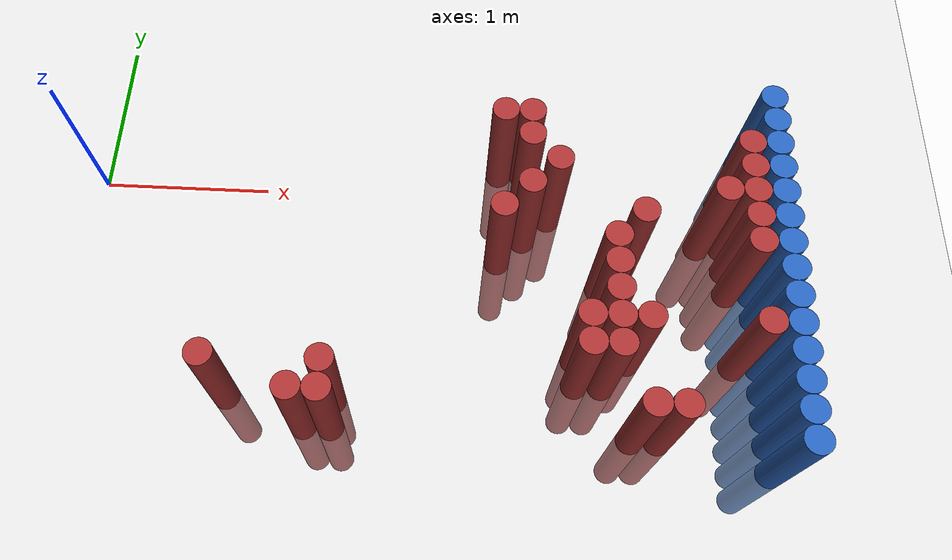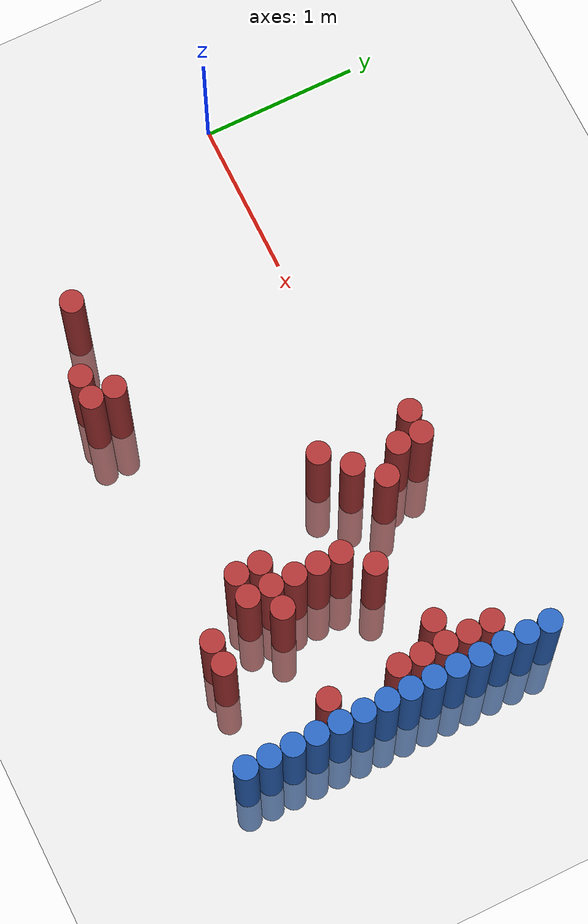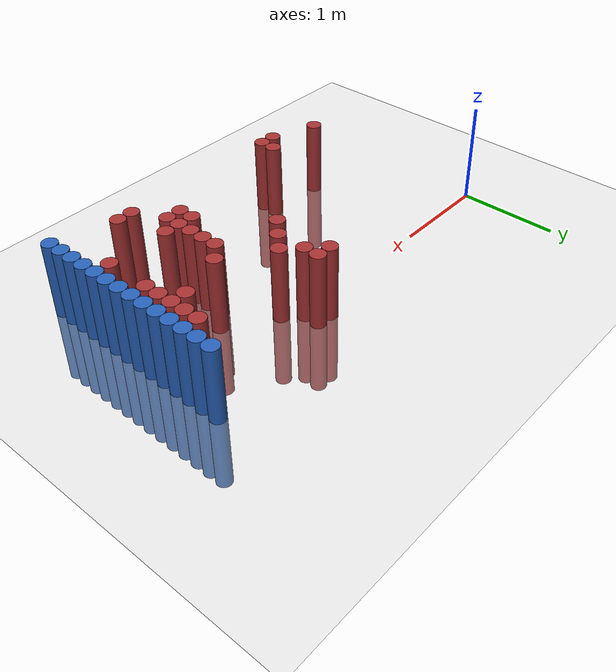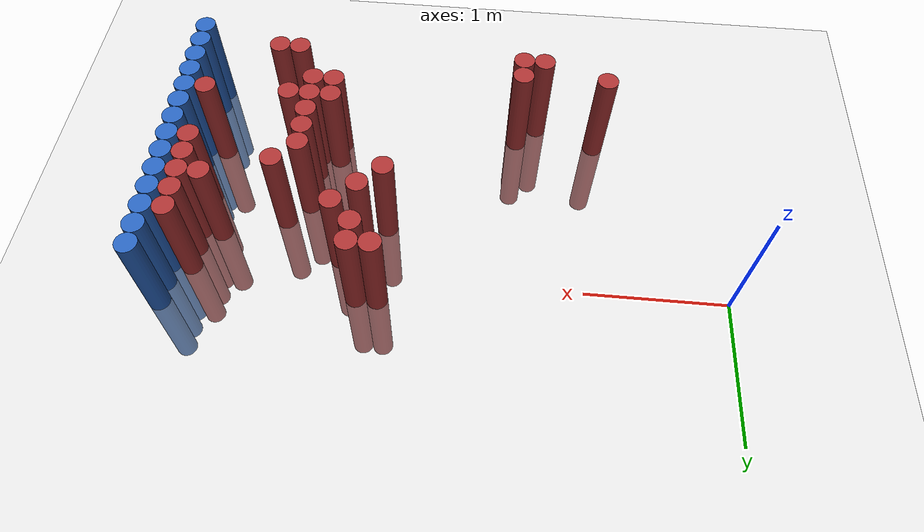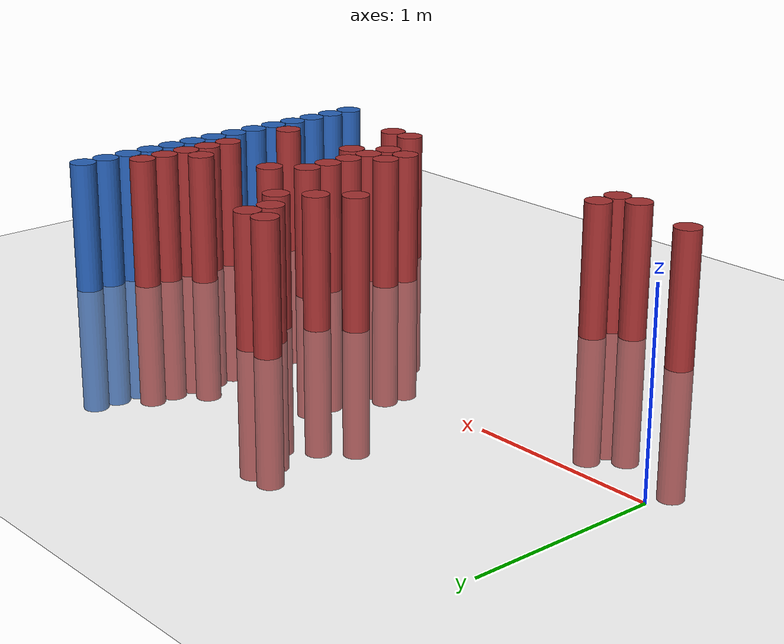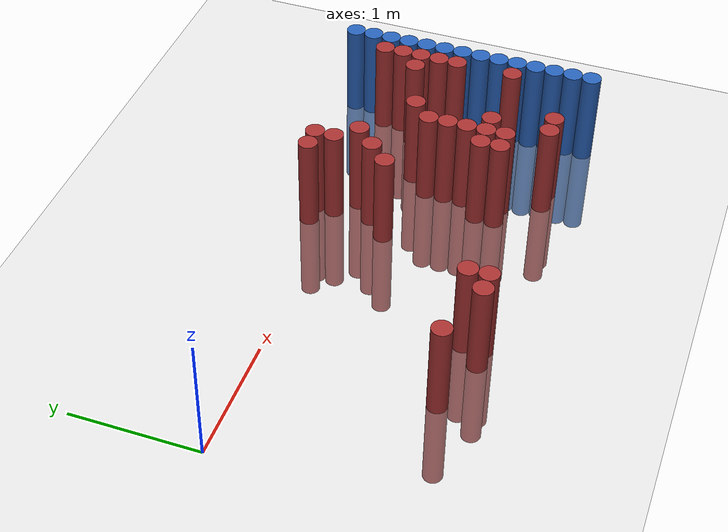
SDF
<sdf version="1.6">
 <world name="default">
  <model name="ground_plane">
   <static>1</static>
   <link name="link">
    <collision name="collision">
     <geometry><plane><normal>0 0 1</normal><size>100 100</size></plane></geometry>
     <surface><friction><ode><mu>100</mu><mu2>50</mu2></ode></friction></surface>
    </collision>
    <visual name="visual">
     <cast_shadows>0</cast_shadows>
     <geometry><plane><normal>0 0 1</normal><size>100 100</size></plane></geometry>
     <material>
      <script><uri>file://media/materials/scripts/gazebo.material</uri><name>Gazebo/Grey</name></script>
     </material>
    </visual>
   </link>
  </model>
  <model name="unit_cylinder_94">
   <static>1</static>
   <pose>3.925000 -1.475000 0.000000 0.000000 0.000000 0.000000</pose>
   <link name="link">
    <inertial>
     <mass>1</mass>
     <inertia><ixx>0.145833</ixx><ixy>0</ixy><ixz>0</ixz><iyy>0.145833</iyy><iyz>0</iyz><izz>0.125</izz></inertia>
    </inertial>
    <collision name="collision">
     <geometry><cylinder><radius>0.075000</radius><length>1.5</length></cylinder></geometry>
    </collision>
    <visual name="visual">
     <geometry><cylinder><radius>0.075000</radius><length>1.5</length></cylinder></geometry>
     <material>
      <ambient>0.152000 0.379000 0.720000 1</ambient>
      <diffuse>0.152000 0.379000 0.720000 1</diffuse>
     </material>
     <material>
      <script><name>Gazebo/Grey</name><uri>file://media/materials/scripts/gazebo.material</uri></script>
     </material>
    </visual>
   </link>
  </model>
  <model name="unit_cylinder_96">
   <static>1</static>
   <pose>3.925000 -1.325000 0.000000 0.000000 0.000000 0.000000</pose>
   <link name="link">
    <inertial>
     <mass>1</mass>
     <inertia><ixx>0.145833</ixx><ixy>0</ixy><ixz>0</ixz><iyy>0.145833</iyy><iyz>0</iyz><izz>0.125</izz></inertia>
    </inertial>
    <collision name="collision">
     <geometry><cylinder><radius>0.075000</radius><length>1.5</length></cylinder></geometry>
    </collision>
    <visual name="visual">
     <geometry><cylinder><radius>0.075000</radius><length>1.5</length></cylinder></geometry>
     <material>
      <ambient>0.152000 0.379000 0.720000 1</ambient>
      <diffuse>0.152000 0.379000 0.720000 1</diffuse>
     </material>
     <material>
      <script><name>Gazebo/Grey</name><uri>file://media/materials/scripts/gazebo.material</uri></script>
     </material>
    </visual>
   </link>
  </model>
  <model name="unit_cylinder_98">
   <static>1</static>
   <pose>3.925000 -1.175000 0.000000 0.000000 0.000000 0.000000</pose>
   <link name="link">
    <inertial>
     <mass>1</mass>
     <inertia><ixx>0.145833</ixx><ixy>0</ixy><ixz>0</ixz><iyy>0.145833</iyy><iyz>0</iyz><izz>0.125</izz></inertia>
    </inertial>
    <collision name="collision">
     <geometry><cylinder><radius>0.075000</radius><length>1.5</length></cylinder></geometry>
    </collision>
    <visual name="visual">
     <geometry><cylinder><radius>0.075000</radius><length>1.5</length></cylinder></geometry>
     <material>
      <ambient>0.152000 0.379000 0.720000 1</ambient>
      <diffuse>0.152000 0.379000 0.720000 1</diffuse>
     </material>
     <material>
      <script><name>Gazebo/Grey</name><uri>file://media/materials/scripts/gazebo.material</uri></script>
     </material>
    </visual>
   </link>
  </model>
  <model name="unit_cylinder_100">
   <static>1</static>
   <pose>3.925000 -1.025000 0.000000 0.000000 0.000000 0.000000</pose>
   <link name="link">
    <inertial>
     <mass>1</mass>
     <inertia><ixx>0.145833</ixx><ixy>0</ixy><ixz>0</ixz><iyy>0.145833</iyy><iyz>0</iyz><izz>0.125</izz></inertia>
    </inertial>
    <collision name="collision">
     <geometry><cylinder><radius>0.075000</radius><length>1.5</length></cylinder></geometry>
    </collision>
    <visual name="visual">
     <geometry><cylinder><radius>0.075000</radius><length>1.5</length></cylinder></geometry>
     <material>
      <ambient>0.152000 0.379000 0.720000 1</ambient>
      <diffuse>0.152000 0.379000 0.720000 1</diffuse>
     </material>
     <material>
      <script><name>Gazebo/Grey</name><uri>file://media/materials/scripts/gazebo.material</uri></script>
     </material>
    </visual>
   </link>
  </model>
  <model name="unit_cylinder_102">
   <static>1</static>
   <pose>3.925000 -0.875000 0.000000 0.000000 0.000000 0.000000</pose>
   <link name="link">
    <inertial>
     <mass>1</mass>
     <inertia><ixx>0.145833</ixx><ixy>0</ixy><ixz>0</ixz><iyy>0.145833</iyy><iyz>0</iyz><izz>0.125</izz></inertia>
    </inertial>
    <collision name="collision">
     <geometry><cylinder><radius>0.075000</radius><length>1.5</length></cylinder></geometry>
    </collision>
    <visual name="visual">
     <geometry><cylinder><radius>0.075000</radius><length>1.5</length></cylinder></geometry>
     <material>
      <ambient>0.152000 0.379000 0.720000 1</ambient>
      <diffuse>0.152000 0.379000 0.720000 1</diffuse>
     </material>
     <material>
      <script><name>Gazebo/Grey</name><uri>file://media/materials/scripts/gazebo.material</uri></script>
     </material>
    </visual>
   </link>
  </model>
  <model name="unit_cylinder_104">
   <static>1</static>
   <pose>3.925000 -0.725000 0.000000 0.000000 0.000000 0.000000</pose>
   <link name="link">
    <inertial>
     <mass>1</mass>
     <inertia><ixx>0.145833</ixx><ixy>0</ixy><ixz>0</ixz><iyy>0.145833</iyy><iyz>0</iyz><izz>0.125</izz></inertia>
    </inertial>
    <collision name="collision">
     <geometry><cylinder><radius>0.075000</radius><length>1.5</length></cylinder></geometry>
    </collision>
    <visual name="visual">
     <geometry><cylinder><radius>0.075000</radius><length>1.5</length></cylinder></geometry>
     <material>
      <ambient>0.152000 0.379000 0.720000 1</ambient>
      <diffuse>0.152000 0.379000 0.720000 1</diffuse>
     </material>
     <material>
      <script><name>Gazebo/Grey</name><uri>file://media/materials/scripts/gazebo.material</uri></script>
     </material>
    </visual>
   </link>
  </model>
  <model name="unit_cylinder_106">
   <static>1</static>
   <pose>3.925000 -0.575000 0.000000 0.000000 0.000000 0.000000</pose>
   <link name="link">
    <inertial>
     <mass>1</mass>
     <inertia><ixx>0.145833</ixx><ixy>0</ixy><ixz>0</ixz><iyy>0.145833</iyy><iyz>0</iyz><izz>0.125</izz></inertia>
    </inertial>
    <collision name="collision">
     <geometry><cylinder><radius>0.075000</radius><length>1.5</length></cylinder></geometry>
    </collision>
    <visual name="visual">
     <geometry><cylinder><radius>0.075000</radius><length>1.5</length></cylinder></geometry>
     <material>
      <ambient>0.152000 0.379000 0.720000 1</ambient>
      <diffuse>0.152000 0.379000 0.720000 1</diffuse>
     </material>
     <material>
      <script><name>Gazebo/Grey</name><uri>file://media/materials/scripts/gazebo.material</uri></script>
     </material>
    </visual>
   </link>
  </model>
  <model name="unit_cylinder_108">
   <static>1</static>
   <pose>3.925000 -0.425000 0.000000 0.000000 0.000000 0.000000</pose>
   <link name="link">
    <inertial>
     <mass>1</mass>
     <inertia><ixx>0.145833</ixx><ixy>0</ixy><ixz>0</ixz><iyy>0.145833</iyy><iyz>0</iyz><izz>0.125</izz></inertia>
    </inertial>
    <collision name="collision">
     <geometry><cylinder><radius>0.075000</radius><length>1.5</length></cylinder></geometry>
    </collision>
    <visual name="visual">
     <geometry><cylinder><radius>0.075000</radius><length>1.5</length></cylinder></geometry>
     <material>
      <ambient>0.152000 0.379000 0.720000 1</ambient>
      <diffuse>0.152000 0.379000 0.720000 1</diffuse>
     </material>
     <material>
      <script><name>Gazebo/Grey</name><uri>file://media/materials/scripts/gazebo.material</uri></script>
     </material>
    </visual>
   </link>
  </model>
  <model name="unit_cylinder_110">
   <static>1</static>
   <pose>3.925000 -0.275000 0.000000 0.000000 0.000000 0.000000</pose>
   <link name="link">
    <inertial>
     <mass>1</mass>
     <inertia><ixx>0.145833</ixx><ixy>0</ixy><ixz>0</ixz><iyy>0.145833</iyy><iyz>0</iyz><izz>0.125</izz></inertia>
    </inertial>
    <collision name="collision">
     <geometry><cylinder><radius>0.075000</radius><length>1.5</length></cylinder></geometry>
    </collision>
    <visual name="visual">
     <geometry><cylinder><radius>0.075000</radius><length>1.5</length></cylinder></geometry>
     <material>
      <ambient>0.152000 0.379000 0.720000 1</ambient>
      <diffuse>0.152000 0.379000 0.720000 1</diffuse>
     </material>
     <material>
      <script><name>Gazebo/Grey</name><uri>file://media/materials/scripts/gazebo.material</uri></script>
     </material>
    </visual>
   </link>
  </model>
  <model name="unit_cylinder_112">
   <static>1</static>
   <pose>3.925000 -0.125000 0.000000 0.000000 0.000000 0.000000</pose>
   <link name="link">
    <inertial>
     <mass>1</mass>
     <inertia><ixx>0.145833</ixx><ixy>0</ixy><ixz>0</ixz><iyy>0.145833</iyy><iyz>0</iyz><izz>0.125</izz></inertia>
    </inertial>
    <collision name="collision">
     <geometry><cylinder><radius>0.075000</radius><length>1.5</length></cylinder></geometry>
    </collision>
    <visual name="visual">
     <geometry><cylinder><radius>0.075000</radius><length>1.5</length></cylinder></geometry>
     <material>
      <ambient>0.152000 0.379000 0.720000 1</ambient>
      <diffuse>0.152000 0.379000 0.720000 1</diffuse>
     </material>
     <material>
      <script><name>Gazebo/Grey</name><uri>file://media/materials/scripts/gazebo.material</uri></script>
     </material>
    </visual>
   </link>
  </model>
  <model name="unit_cylinder_114">
   <static>1</static>
   <pose>3.925000 0.025000 0.000000 0.000000 0.000000 0.000000</pose>
   <link name="link">
    <inertial>
     <mass>1</mass>
     <inertia><ixx>0.145833</ixx><ixy>0</ixy><ixz>0</ixz><iyy>0.145833</iyy><iyz>0</iyz><izz>0.125</izz></inertia>
    </inertial>
    <collision name="collision">
     <geometry><cylinder><radius>0.075000</radius><length>1.5</length></cylinder></geometry>
    </collision>
    <visual name="visual">
     <geometry><cylinder><radius>0.075000</radius><length>1.5</length></cylinder></geometry>
     <material>
      <ambient>0.152000 0.379000 0.720000 1</ambient>
      <diffuse>0.152000 0.379000 0.720000 1</diffuse>
     </material>
     <material>
      <script><name>Gazebo/Grey</name><uri>file://media/materials/scripts/gazebo.material</uri></script>
     </material>
    </visual>
   </link>
  </model>
  <model name="unit_cylinder_116">
   <static>1</static>
   <pose>3.925000 0.175000 0.000000 0.000000 0.000000 0.000000</pose>
   <link name="link">
    <inertial>
     <mass>1</mass>
     <inertia><ixx>0.145833</ixx><ixy>0</ixy><ixz>0</ixz><iyy>0.145833</iyy><iyz>0</iyz><izz>0.125</izz></inertia>
    </inertial>
    <collision name="collision">
     <geometry><cylinder><radius>0.075000</radius><length>1.5</length></cylinder></geometry>
    </collision>
    <visual name="visual">
     <geometry><cylinder><radius>0.075000</radius><length>1.5</length></cylinder></geometry>
     <material>
      <ambient>0.152000 0.379000 0.720000 1</ambient>
      <diffuse>0.152000 0.379000 0.720000 1</diffuse>
     </material>
     <material>
      <script><name>Gazebo/Grey</name><uri>file://media/materials/scripts/gazebo.material</uri></script>
     </material>
    </visual>
   </link>
  </model>
  <model name="unit_cylinder_118">
   <static>1</static>
   <pose>3.925000 0.325000 0.000000 0.000000 0.000000 0.000000</pose>
   <link name="link">
    <inertial>
     <mass>1</mass>
     <inertia><ixx>0.145833</ixx><ixy>0</ixy><ixz>0</ixz><iyy>0.145833</iyy><iyz>0</iyz><izz>0.125</izz></inertia>
    </inertial>
    <collision name="collision">
     <geometry><cylinder><radius>0.075000</radius><length>1.5</length></cylinder></geometry>
    </collision>
    <visual name="visual">
     <geometry><cylinder><radius>0.075000</radius><length>1.5</length></cylinder></geometry>
     <material>
      <ambient>0.152000 0.379000 0.720000 1</ambient>
      <diffuse>0.152000 0.379000 0.720000 1</diffuse>
     </material>
     <material>
      <script><name>Gazebo/Grey</name><uri>file://media/materials/scripts/gazebo.material</uri></script>
     </material>
    </visual>
   </link>
  </model>
  <model name="unit_cylinder_336">
   <static>1</static>
   <pose>0.925000 -1.325000 0.000000 0.000000 0.000000 0.000000</pose>
   <link name="link">
    <inertial>
     <mass>1</mass>
     <inertia><ixx>0.145833</ixx><ixy>0</ixy><ixz>0</ixz><iyy>0.145833</iyy><iyz>0</iyz><izz>0.125</izz></inertia>
    </inertial>
    <collision name="collision">
     <geometry><cylinder><radius>0.075000</radius><length>1.5</length></cylinder></geometry>
    </collision>
    <visual name="visual">
     <geometry><cylinder><radius>0.075000</radius><length>1.5</length></cylinder></geometry>
     <material>
      <ambient>0.648000 0.192000 0.192000 1</ambient>
      <diffuse>0.648000 0.192000 0.192000 1</diffuse>
     </material>
     <material>
      <script><name>Gazebo/Grey</name><uri>file://media/materials/scripts/gazebo.material</uri></script>
     </material>
    </visual>
   </link>
  </model>
  <model name="unit_cylinder_350">
   <static>1</static>
   <pose>1.375000 -1.475000 0.000000 0.000000 0.000000 0.000000</pose>
   <link name="link">
    <inertial>
     <mass>1</mass>
     <inertia><ixx>0.145833</ixx><ixy>0</ixy><ixz>0</ixz><iyy>0.145833</iyy><iyz>0</iyz><izz>0.125</izz></inertia>
    </inertial>
    <collision name="collision">
     <geometry><cylinder><radius>0.075000</radius><length>1.5</length></cylinder></geometry>
    </collision>
    <visual name="visual">
     <geometry><cylinder><radius>0.075000</radius><length>1.5</length></cylinder></geometry>
     <material>
      <ambient>0.648000 0.192000 0.192000 1</ambient>
      <diffuse>0.648000 0.192000 0.192000 1</diffuse>
     </material>
     <material>
      <script><name>Gazebo/Grey</name><uri>file://media/materials/scripts/gazebo.material</uri></script>
     </material>
    </visual>
   </link>
  </model>
  <model name="unit_cylinder_355">
   <static>1</static>
   <pose>1.525000 -1.475000 0.000000 0.000000 0.000000 0.000000</pose>
   <link name="link">
    <inertial>
     <mass>1</mass>
     <inertia><ixx>0.145833</ixx><ixy>0</ixy><ixz>0</ixz><iyy>0.145833</iyy><iyz>0</iyz><izz>0.125</izz></inertia>
    </inertial>
    <collision name="collision">
     <geometry><cylinder><radius>0.075000</radius><length>1.5</length></cylinder></geometry>
    </collision>
    <visual name="visual">
     <geometry><cylinder><radius>0.075000</radius><length>1.5</length></cylinder></geometry>
     <material>
      <ambient>0.648000 0.192000 0.192000 1</ambient>
      <diffuse>0.648000 0.192000 0.192000 1</diffuse>
     </material>
     <material>
      <script><name>Gazebo/Grey</name><uri>file://media/materials/scripts/gazebo.material</uri></script>
     </material>
    </visual>
   </link>
  </model>
  <model name="unit_cylinder_356">
   <static>1</static>
   <pose>1.525000 -1.325000 0.000000 0.000000 0.000000 0.000000</pose>
   <link name="link">
    <inertial>
     <mass>1</mass>
     <inertia><ixx>0.145833</ixx><ixy>0</ixy><ixz>0</ixz><iyy>0.145833</iyy><iyz>0</iyz><izz>0.125</izz></inertia>
    </inertial>
    <collision name="collision">
     <geometry><cylinder><radius>0.075000</radius><length>1.5</length></cylinder></geometry>
    </collision>
    <visual name="visual">
     <geometry><cylinder><radius>0.075000</radius><length>1.5</length></cylinder></geometry>
     <material>
      <ambient>0.648000 0.192000 0.192000 1</ambient>
      <diffuse>0.648000 0.192000 0.192000 1</diffuse>
     </material>
     <material>
      <script><name>Gazebo/Grey</name><uri>file://media/materials/scripts/gazebo.material</uri></script>
     </material>
    </visual>
   </link>
  </model>
  <model name="unit_cylinder_377">
   <static>1</static>
   <pose>2.425000 -0.425000 0.000000 0.000000 0.000000 0.000000</pose>
   <link name="link">
    <inertial>
     <mass>1</mass>
     <inertia><ixx>0.145833</ixx><ixy>0</ixy><ixz>0</ixz><iyy>0.145833</iyy><iyz>0</iyz><izz>0.125</izz></inertia>
    </inertial>
    <collision name="collision">
     <geometry><cylinder><radius>0.075000</radius><length>1.5</length></cylinder></geometry>
    </collision>
    <visual name="visual">
     <geometry><cylinder><radius>0.075000</radius><length>1.5</length></cylinder></geometry>
     <material>
      <ambient>0.648000 0.192000 0.192000 1</ambient>
      <diffuse>0.648000 0.192000 0.192000 1</diffuse>
     </material>
     <material>
      <script><name>Gazebo/Grey</name><uri>file://media/materials/scripts/gazebo.material</uri></script>
     </material>
    </visual>
   </link>
  </model>
  <model name="unit_cylinder_378">
   <static>1</static>
   <pose>2.425000 0.175000 0.000000 0.000000 0.000000 0.000000</pose>
   <link name="link">
    <inertial>
     <mass>1</mass>
     <inertia><ixx>0.145833</ixx><ixy>0</ixy><ixz>0</ixz><iyy>0.145833</iyy><iyz>0</iyz><izz>0.125</izz></inertia>
    </inertial>
    <collision name="collision">
     <geometry><cylinder><radius>0.075000</radius><length>1.5</length></cylinder></geometry>
    </collision>
    <visual name="visual">
     <geometry><cylinder><radius>0.075000</radius><length>1.5</length></cylinder></geometry>
     <material>
      <ambient>0.648000 0.192000 0.192000 1</ambient>
      <diffuse>0.648000 0.192000 0.192000 1</diffuse>
     </material>
     <material>
      <script><name>Gazebo/Grey</name><uri>file://media/materials/scripts/gazebo.material</uri></script>
     </material>
    </visual>
   </link>
  </model>
  <model name="unit_cylinder_379">
   <static>1</static>
   <pose>2.575000 -0.275000 0.000000 0.000000 0.000000 0.000000</pose>
   <link name="link">
    <inertial>
     <mass>1</mass>
     <inertia><ixx>0.145833</ixx><ixy>0</ixy><ixz>0</ixz><iyy>0.145833</iyy><iyz>0</iyz><izz>0.125</izz></inertia>
    </inertial>
    <collision name="collision">
     <geometry><cylinder><radius>0.075000</radius><length>1.5</length></cylinder></geometry>
    </collision>
    <visual name="visual">
     <geometry><cylinder><radius>0.075000</radius><length>1.5</length></cylinder></geometry>
     <material>
      <ambient>0.648000 0.192000 0.192000 1</ambient>
      <diffuse>0.648000 0.192000 0.192000 1</diffuse>
     </material>
     <material>
      <script><name>Gazebo/Grey</name><uri>file://media/materials/scripts/gazebo.material</uri></script>
     </material>
    </visual>
   </link>
  </model>
  <model name="unit_cylinder_380">
   <static>1</static>
   <pose>2.575000 0.025000 0.000000 0.000000 0.000000 0.000000</pose>
   <link name="link">
    <inertial>
     <mass>1</mass>
     <inertia><ixx>0.145833</ixx><ixy>0</ixy><ixz>0</ixz><iyy>0.145833</iyy><iyz>0</iyz><izz>0.125</izz></inertia>
    </inertial>
    <collision name="collision">
     <geometry><cylinder><radius>0.075000</radius><length>1.5</length></cylinder></geometry>
    </collision>
    <visual name="visual">
     <geometry><cylinder><radius>0.075000</radius><length>1.5</length></cylinder></geometry>
     <material>
      <ambient>0.648000 0.192000 0.192000 1</ambient>
      <diffuse>0.648000 0.192000 0.192000 1</diffuse>
     </material>
     <material>
      <script><name>Gazebo/Grey</name><uri>file://media/materials/scripts/gazebo.material</uri></script>
     </material>
    </visual>
   </link>
  </model>
  <model name="unit_cylinder_381">
   <static>1</static>
   <pose>2.575000 0.175000 0.000000 0.000000 0.000000 0.000000</pose>
   <link name="link">
    <inertial>
     <mass>1</mass>
     <inertia><ixx>0.145833</ixx><ixy>0</ixy><ixz>0</ixz><iyy>0.145833</iyy><iyz>0</iyz><izz>0.125</izz></inertia>
    </inertial>
    <collision name="collision">
     <geometry><cylinder><radius>0.075000</radius><length>1.5</length></cylinder></geometry>
    </collision>
    <visual name="visual">
     <geometry><cylinder><radius>0.075000</radius><length>1.5</length></cylinder></geometry>
     <material>
      <ambient>0.648000 0.192000 0.192000 1</ambient>
      <diffuse>0.648000 0.192000 0.192000 1</diffuse>
     </material>
     <material>
      <script><name>Gazebo/Grey</name><uri>file://media/materials/scripts/gazebo.material</uri></script>
     </material>
    </visual>
   </link>
  </model>
  <model name="unit_cylinder_383">
   <static>1</static>
   <pose>2.725000 -0.125000 0.000000 0.000000 0.000000 0.000000</pose>
   <link name="link">
    <inertial>
     <mass>1</mass>
     <inertia><ixx>0.145833</ixx><ixy>0</ixy><ixz>0</ixz><iyy>0.145833</iyy><iyz>0</iyz><izz>0.125</izz></inertia>
    </inertial>
    <collision name="collision">
     <geometry><cylinder><radius>0.075000</radius><length>1.5</length></cylinder></geometry>
    </collision>
    <visual name="visual">
     <geometry><cylinder><radius>0.075000</radius><length>1.5</length></cylinder></geometry>
     <material>
      <ambient>0.648000 0.192000 0.192000 1</ambient>
      <diffuse>0.648000 0.192000 0.192000 1</diffuse>
     </material>
     <material>
      <script><name>Gazebo/Grey</name><uri>file://media/materials/scripts/gazebo.material</uri></script>
     </material>
    </visual>
   </link>
  </model>
  <model name="unit_cylinder_386">
   <static>1</static>
   <pose>2.875000 -1.175000 0.000000 0.000000 0.000000 0.000000</pose>
   <link name="link">
    <inertial>
     <mass>1</mass>
     <inertia><ixx>0.145833</ixx><ixy>0</ixy><ixz>0</ixz><iyy>0.145833</iyy><iyz>0</iyz><izz>0.125</izz></inertia>
    </inertial>
    <collision name="collision">
     <geometry><cylinder><radius>0.075000</radius><length>1.5</length></cylinder></geometry>
    </collision>
    <visual name="visual">
     <geometry><cylinder><radius>0.075000</radius><length>1.5</length></cylinder></geometry>
     <material>
      <ambient>0.648000 0.192000 0.192000 1</ambient>
      <diffuse>0.648000 0.192000 0.192000 1</diffuse>
     </material>
     <material>
      <script><name>Gazebo/Grey</name><uri>file://media/materials/scripts/gazebo.material</uri></script>
     </material>
    </visual>
   </link>
  </model>
  <model name="unit_cylinder_387">
   <static>1</static>
   <pose>2.875000 -1.025000 0.000000 0.000000 0.000000 0.000000</pose>
   <link name="link">
    <inertial>
     <mass>1</mass>
     <inertia><ixx>0.145833</ixx><ixy>0</ixy><ixz>0</ixz><iyy>0.145833</iyy><iyz>0</iyz><izz>0.125</izz></inertia>
    </inertial>
    <collision name="collision">
     <geometry><cylinder><radius>0.075000</radius><length>1.5</length></cylinder></geometry>
    </collision>
    <visual name="visual">
     <geometry><cylinder><radius>0.075000</radius><length>1.5</length></cylinder></geometry>
     <material>
      <ambient>0.648000 0.192000 0.192000 1</ambient>
      <diffuse>0.648000 0.192000 0.192000 1</diffuse>
     </material>
     <material>
      <script><name>Gazebo/Grey</name><uri>file://media/materials/scripts/gazebo.material</uri></script>
     </material>
    </visual>
   </link>
  </model>
  <model name="unit_cylinder_391">
   <static>1</static>
   <pose>3.025000 -1.175000 0.000000 0.000000 0.000000 0.000000</pose>
   <link name="link">
    <inertial>
     <mass>1</mass>
     <inertia><ixx>0.145833</ixx><ixy>0</ixy><ixz>0</ixz><iyy>0.145833</iyy><iyz>0</iyz><izz>0.125</izz></inertia>
    </inertial>
    <collision name="collision">
     <geometry><cylinder><radius>0.075000</radius><length>1.5</length></cylinder></geometry>
    </collision>
    <visual name="visual">
     <geometry><cylinder><radius>0.075000</radius><length>1.5</length></cylinder></geometry>
     <material>
      <ambient>0.648000 0.192000 0.192000 1</ambient>
      <diffuse>0.648000 0.192000 0.192000 1</diffuse>
     </material>
     <material>
      <script><name>Gazebo/Grey</name><uri>file://media/materials/scripts/gazebo.material</uri></script>
     </material>
    </visual>
   </link>
  </model>
  <model name="unit_cylinder_392">
   <static>1</static>
   <pose>3.025000 -1.025000 0.000000 0.000000 0.000000 0.000000</pose>
   <link name="link">
    <inertial>
     <mass>1</mass>
     <inertia><ixx>0.145833</ixx><ixy>0</ixy><ixz>0</ixz><iyy>0.145833</iyy><iyz>0</iyz><izz>0.125</izz></inertia>
    </inertial>
    <collision name="collision">
     <geometry><cylinder><radius>0.075000</radius><length>1.5</length></cylinder></geometry>
    </collision>
    <visual name="visual">
     <geometry><cylinder><radius>0.075000</radius><length>1.5</length></cylinder></geometry>
     <material>
      <ambient>0.648000 0.192000 0.192000 1</ambient>
      <diffuse>0.648000 0.192000 0.192000 1</diffuse>
     </material>
     <material>
      <script><name>Gazebo/Grey</name><uri>file://media/materials/scripts/gazebo.material</uri></script>
     </material>
    </visual>
   </link>
  </model>
  <model name="unit_cylinder_393">
   <static>1</static>
   <pose>3.025000 -0.875000 0.000000 0.000000 0.000000 0.000000</pose>
   <link name="link">
    <inertial>
     <mass>1</mass>
     <inertia><ixx>0.145833</ixx><ixy>0</ixy><ixz>0</ixz><iyy>0.145833</iyy><iyz>0</iyz><izz>0.125</izz></inertia>
    </inertial>
    <collision name="collision">
     <geometry><cylinder><radius>0.075000</radius><length>1.5</length></cylinder></geometry>
    </collision>
    <visual name="visual">
     <geometry><cylinder><radius>0.075000</radius><length>1.5</length></cylinder></geometry>
     <material>
      <ambient>0.648000 0.192000 0.192000 1</ambient>
      <diffuse>0.648000 0.192000 0.192000 1</diffuse>
     </material>
     <material>
      <script><name>Gazebo/Grey</name><uri>file://media/materials/scripts/gazebo.material</uri></script>
     </material>
    </visual>
   </link>
  </model>
  <model name="unit_cylinder_394">
   <static>1</static>
   <pose>3.025000 -0.725000 0.000000 0.000000 0.000000 0.000000</pose>
   <link name="link">
    <inertial>
     <mass>1</mass>
     <inertia><ixx>0.145833</ixx><ixy>0</ixy><ixz>0</ixz><iyy>0.145833</iyy><iyz>0</iyz><izz>0.125</izz></inertia>
    </inertial>
    <collision name="collision">
     <geometry><cylinder><radius>0.075000</radius><length>1.5</length></cylinder></geometry>
    </collision>
    <visual name="visual">
     <geometry><cylinder><radius>0.075000</radius><length>1.5</length></cylinder></geometry>
     <material>
      <ambient>0.648000 0.192000 0.192000 1</ambient>
      <diffuse>0.648000 0.192000 0.192000 1</diffuse>
     </material>
     <material>
      <script><name>Gazebo/Grey</name><uri>file://media/materials/scripts/gazebo.material</uri></script>
     </material>
    </visual>
   </link>
  </model>
  <model name="unit_cylinder_395">
   <static>1</static>
   <pose>3.025000 -0.575000 0.000000 0.000000 0.000000 0.000000</pose>
   <link name="link">
    <inertial>
     <mass>1</mass>
     <inertia><ixx>0.145833</ixx><ixy>0</ixy><ixz>0</ixz><iyy>0.145833</iyy><iyz>0</iyz><izz>0.125</izz></inertia>
    </inertial>
    <collision name="collision">
     <geometry><cylinder><radius>0.075000</radius><length>1.5</length></cylinder></geometry>
    </collision>
    <visual name="visual">
     <geometry><cylinder><radius>0.075000</radius><length>1.5</length></cylinder></geometry>
     <material>
      <ambient>0.648000 0.192000 0.192000 1</ambient>
      <diffuse>0.648000 0.192000 0.192000 1</diffuse>
     </material>
     <material>
      <script><name>Gazebo/Grey</name><uri>file://media/materials/scripts/gazebo.material</uri></script>
     </material>
    </visual>
   </link>
  </model>
  <model name="unit_cylinder_401">
   <static>1</static>
   <pose>3.175000 -1.475000 0.000000 0.000000 0.000000 0.000000</pose>
   <link name="link">
    <inertial>
     <mass>1</mass>
     <inertia><ixx>0.145833</ixx><ixy>0</ixy><ixz>0</ixz><iyy>0.145833</iyy><iyz>0</iyz><izz>0.125</izz></inertia>
    </inertial>
    <collision name="collision">
     <geometry><cylinder><radius>0.075000</radius><length>1.5</length></cylinder></geometry>
    </collision>
    <visual name="visual">
     <geometry><cylinder><radius>0.075000</radius><length>1.5</length></cylinder></geometry>
     <material>
      <ambient>0.648000 0.192000 0.192000 1</ambient>
      <diffuse>0.648000 0.192000 0.192000 1</diffuse>
     </material>
     <material>
      <script><name>Gazebo/Grey</name><uri>file://media/materials/scripts/gazebo.material</uri></script>
     </material>
    </visual>
   </link>
  </model>
  <model name="unit_cylinder_402">
   <static>1</static>
   <pose>3.175000 -1.025000 0.000000 0.000000 0.000000 0.000000</pose>
   <link name="link">
    <inertial>
     <mass>1</mass>
     <inertia><ixx>0.145833</ixx><ixy>0</ixy><ixz>0</ixz><iyy>0.145833</iyy><iyz>0</iyz><izz>0.125</izz></inertia>
    </inertial>
    <collision name="collision">
     <geometry><cylinder><radius>0.075000</radius><length>1.5</length></cylinder></geometry>
    </collision>
    <visual name="visual">
     <geometry><cylinder><radius>0.075000</radius><length>1.5</length></cylinder></geometry>
     <material>
      <ambient>0.648000 0.192000 0.192000 1</ambient>
      <diffuse>0.648000 0.192000 0.192000 1</diffuse>
     </material>
     <material>
      <script><name>Gazebo/Grey</name><uri>file://media/materials/scripts/gazebo.material</uri></script>
     </material>
    </visual>
   </link>
  </model>
  <model name="unit_cylinder_403">
   <static>1</static>
   <pose>3.175000 -0.425000 0.000000 0.000000 0.000000 0.000000</pose>
   <link name="link">
    <inertial>
     <mass>1</mass>
     <inertia><ixx>0.145833</ixx><ixy>0</ixy><ixz>0</ixz><iyy>0.145833</iyy><iyz>0</iyz><izz>0.125</izz></inertia>
    </inertial>
    <collision name="collision">
     <geometry><cylinder><radius>0.075000</radius><length>1.5</length></cylinder></geometry>
    </collision>
    <visual name="visual">
     <geometry><cylinder><radius>0.075000</radius><length>1.5</length></cylinder></geometry>
     <material>
      <ambient>0.648000 0.192000 0.192000 1</ambient>
      <diffuse>0.648000 0.192000 0.192000 1</diffuse>
     </material>
     <material>
      <script><name>Gazebo/Grey</name><uri>file://media/materials/scripts/gazebo.material</uri></script>
     </material>
    </visual>
   </link>
  </model>
  <model name="unit_cylinder_410">
   <static>1</static>
   <pose>3.325000 -1.475000 0.000000 0.000000 0.000000 0.000000</pose>
   <link name="link">
    <inertial>
     <mass>1</mass>
     <inertia><ixx>0.145833</ixx><ixy>0</ixy><ixz>0</ixz><iyy>0.145833</iyy><iyz>0</iyz><izz>0.125</izz></inertia>
    </inertial>
    <collision name="collision">
     <geometry><cylinder><radius>0.075000</radius><length>1.5</length></cylinder></geometry>
    </collision>
    <visual name="visual">
     <geometry><cylinder><radius>0.075000</radius><length>1.5</length></cylinder></geometry>
     <material>
      <ambient>0.648000 0.192000 0.192000 1</ambient>
      <diffuse>0.648000 0.192000 0.192000 1</diffuse>
     </material>
     <material>
      <script><name>Gazebo/Grey</name><uri>file://media/materials/scripts/gazebo.material</uri></script>
     </material>
    </visual>
   </link>
  </model>
  <model name="unit_cylinder_413">
   <static>1</static>
   <pose>3.625000 -0.275000 0.000000 0.000000 0.000000 0.000000</pose>
   <link name="link">
    <inertial>
     <mass>1</mass>
     <inertia><ixx>0.145833</ixx><ixy>0</ixy><ixz>0</ixz><iyy>0.145833</iyy><iyz>0</iyz><izz>0.125</izz></inertia>
    </inertial>
    <collision name="collision">
     <geometry><cylinder><radius>0.075000</radius><length>1.5</length></cylinder></geometry>
    </collision>
    <visual name="visual">
     <geometry><cylinder><radius>0.075000</radius><length>1.5</length></cylinder></geometry>
     <material>
      <ambient>0.648000 0.192000 0.192000 1</ambient>
      <diffuse>0.648000 0.192000 0.192000 1</diffuse>
     </material>
     <material>
      <script><name>Gazebo/Grey</name><uri>file://media/materials/scripts/gazebo.material</uri></script>
     </material>
    </visual>
   </link>
  </model>
  <model name="unit_cylinder_420">
   <static>1</static>
   <pose>3.775000 -1.025000 0.000000 0.000000 0.000000 0.000000</pose>
   <link name="link">
    <inertial>
     <mass>1</mass>
     <inertia><ixx>0.145833</ixx><ixy>0</ixy><ixz>0</ixz><iyy>0.145833</iyy><iyz>0</iyz><izz>0.125</izz></inertia>
    </inertial>
    <collision name="collision">
     <geometry><cylinder><radius>0.075000</radius><length>1.5</length></cylinder></geometry>
    </collision>
    <visual name="visual">
     <geometry><cylinder><radius>0.075000</radius><length>1.5</length></cylinder></geometry>
     <material>
      <ambient>0.648000 0.192000 0.192000 1</ambient>
      <diffuse>0.648000 0.192000 0.192000 1</diffuse>
     </material>
     <material>
      <script><name>Gazebo/Grey</name><uri>file://media/materials/scripts/gazebo.material</uri></script>
     </material>
    </visual>
   </link>
  </model>
  <model name="unit_cylinder_421">
   <static>1</static>
   <pose>3.775000 -0.575000 0.000000 0.000000 0.000000 0.000000</pose>
   <link name="link">
    <inertial>
     <mass>1</mass>
     <inertia><ixx>0.145833</ixx><ixy>0</ixy><ixz>0</ixz><iyy>0.145833</iyy><iyz>0</iyz><izz>0.125</izz></inertia>
    </inertial>
    <collision name="collision">
     <geometry><cylinder><radius>0.075000</radius><length>1.5</length></cylinder></geometry>
    </collision>
    <visual name="visual">
     <geometry><cylinder><radius>0.075000</radius><length>1.5</length></cylinder></geometry>
     <material>
      <ambient>0.648000 0.192000 0.192000 1</ambient>
      <diffuse>0.648000 0.192000 0.192000 1</diffuse>
     </material>
     <material>
      <script><name>Gazebo/Grey</name><uri>file://media/materials/scripts/gazebo.material</uri></script>
     </material>
    </visual>
   </link>
  </model>
  <model name="unit_cylinder_422">
   <static>1</static>
   <pose>3.775000 -0.425000 0.000000 0.000000 0.000000 0.000000</pose>
   <link name="link">
    <inertial>
     <mass>1</mass>
     <inertia><ixx>0.145833</ixx><ixy>0</ixy><ixz>0</ixz><iyy>0.145833</iyy><iyz>0</iyz><izz>0.125</izz></inertia>
    </inertial>
    <collision name="collision">
     <geometry><cylinder><radius>0.075000</radius><length>1.5</length></cylinder></geometry>
    </collision>
    <visual name="visual">
     <geometry><cylinder><radius>0.075000</radius><length>1.5</length></cylinder></geometry>
     <material>
      <ambient>0.648000 0.192000 0.192000 1</ambient>
      <diffuse>0.648000 0.192000 0.192000 1</diffuse>
     </material>
     <material>
      <script><name>Gazebo/Grey</name><uri>file://media/materials/scripts/gazebo.material</uri></script>
     </material>
    </visual>
   </link>
  </model>
  <model name="unit_cylinder_423">
   <static>1</static>
   <pose>3.775000 -0.275000 0.000000 0.000000 0.000000 0.000000</pose>
   <link name="link">
    <inertial>
     <mass>1</mass>
     <inertia><ixx>0.145833</ixx><ixy>0</ixy><ixz>0</ixz><iyy>0.145833</iyy><iyz>0</iyz><izz>0.125</izz></inertia>
    </inertial>
    <collision name="collision">
     <geometry><cylinder><radius>0.075000</radius><length>1.5</length></cylinder></geometry>
    </collision>
    <visual name="visual">
     <geometry><cylinder><radius>0.075000</radius><length>1.5</length></cylinder></geometry>
     <material>
      <ambient>0.648000 0.192000 0.192000 1</ambient>
      <diffuse>0.648000 0.192000 0.192000 1</diffuse>
     </material>
     <material>
      <script><name>Gazebo/Grey</name><uri>file://media/materials/scripts/gazebo.material</uri></script>
     </material>
    </visual>
   </link>
  </model>
  <model name="unit_cylinder_424">
   <static>1</static>
   <pose>3.775000 -0.125000 0.000000 0.000000 0.000000 0.000000</pose>
   <link name="link">
    <inertial>
     <mass>1</mass>
     <inertia><ixx>0.145833</ixx><ixy>0</ixy><ixz>0</ixz><iyy>0.145833</iyy><iyz>0</iyz><izz>0.125</izz></inertia>
    </inertial>
    <collision name="collision">
     <geometry><cylinder><radius>0.075000</radius><length>1.5</length></cylinder></geometry>
    </collision>
    <visual name="visual">
     <geometry><cylinder><radius>0.075000</radius><length>1.5</length></cylinder></geometry>
     <material>
      <ambient>0.648000 0.192000 0.192000 1</ambient>
      <diffuse>0.648000 0.192000 0.192000 1</diffuse>
     </material>
     <material>
      <script><name>Gazebo/Grey</name><uri>file://media/materials/scripts/gazebo.material</uri></script>
     </material>
    </visual>
   </link>
  </model>
  <model name="unit_cylinder_425">
   <static>1</static>
   <pose>3.775000 0.025000 0.000000 0.000000 0.000000 0.000000</pose>
   <link name="link">
    <inertial>
     <mass>1</mass>
     <inertia><ixx>0.145833</ixx><ixy>0</ixy><ixz>0</ixz><iyy>0.145833</iyy><iyz>0</iyz><izz>0.125</izz></inertia>
    </inertial>
    <collision name="collision">
     <geometry><cylinder><radius>0.075000</radius><length>1.5</length></cylinder></geometry>
    </collision>
    <visual name="visual">
     <geometry><cylinder><radius>0.075000</radius><length>1.5</length></cylinder></geometry>
     <material>
      <ambient>0.648000 0.192000 0.192000 1</ambient>
      <diffuse>0.648000 0.192000 0.192000 1</diffuse>
     </material>
     <material>
      <script><name>Gazebo/Grey</name><uri>file://media/materials/scripts/gazebo.material</uri></script>
     </material>
    </visual>
   </link>
  </model>
  <model name="unit_cylinder_435">
   <static>1</static>
   <pose>3.925000 -1.625000 0.000000 0.000000 0.000000 0.000000</pose>
   <link name="link">
    <inertial>
     <mass>1</mass>
     <inertia><ixx>0.145833</ixx><ixy>0</ixy><ixz>0</ixz><iyy>0.145833</iyy><iyz>0</iyz><izz>0.125</izz></inertia>
    </inertial>
    <collision name="collision">
     <geometry><cylinder><radius>0.075000</radius><length>1.5</length></cylinder></geometry>
    </collision>
    <visual name="visual">
     <geometry><cylinder><radius>0.075000</radius><length>1.5</length></cylinder></geometry>
     <material>
      <ambient>0.152000 0.379000 0.720000 1</ambient>
      <diffuse>0.152000 0.379000 0.720000 1</diffuse>
     </material>
     <material>
      <script><name>Gazebo/Grey</name><uri>file://media/materials/scripts/gazebo.material</uri></script>
     </material>
    </visual>
   </link>
  </model>
  <model name="unit_cylinder_436">
   <static>1</static>
   <pose>3.925000 -1.475000 0.000000 0.000000 0.000000 0.000000</pose>
   <link name="link">
    <inertial>
     <mass>1</mass>
     <inertia><ixx>0.145833</ixx><ixy>0</ixy><ixz>0</ixz><iyy>0.145833</iyy><iyz>0</iyz><izz>0.125</izz></inertia>
    </inertial>
    <collision name="collision">
     <geometry><cylinder><radius>0.075000</radius><length>1.5</length></cylinder></geometry>
    </collision>
    <visual name="visual">
     <geometry><cylinder><radius>0.075000</radius><length>1.5</length></cylinder></geometry>
     <material>
      <ambient>0.152000 0.379000 0.720000 1</ambient>
      <diffuse>0.152000 0.379000 0.720000 1</diffuse>
     </material>
     <material>
      <script><name>Gazebo/Grey</name><uri>file://media/materials/scripts/gazebo.material</uri></script>
     </material>
    </visual>
   </link>
  </model>
  <model name="unit_cylinder_437">
   <static>1</static>
   <pose>3.925000 -1.325000 0.000000 0.000000 0.000000 0.000000</pose>
   <link name="link">
    <inertial>
     <mass>1</mass>
     <inertia><ixx>0.145833</ixx><ixy>0</ixy><ixz>0</ixz><iyy>0.145833</iyy><iyz>0</iyz><izz>0.125</izz></inertia>
    </inertial>
    <collision name="collision">
     <geometry><cylinder><radius>0.075000</radius><length>1.5</length></cylinder></geometry>
    </collision>
    <visual name="visual">
     <geometry><cylinder><radius>0.075000</radius><length>1.5</length></cylinder></geometry>
     <material>
      <ambient>0.152000 0.379000 0.720000 1</ambient>
      <diffuse>0.152000 0.379000 0.720000 1</diffuse>
     </material>
     <material>
      <script><name>Gazebo/Grey</name><uri>file://media/materials/scripts/gazebo.material</uri></script>
     </material>
    </visual>
   </link>
  </model>
  <model name="unit_cylinder_438">
   <static>1</static>
   <pose>3.925000 -1.175000 0.000000 0.000000 0.000000 0.000000</pose>
   <link name="link">
    <inertial>
     <mass>1</mass>
     <inertia><ixx>0.145833</ixx><ixy>0</ixy><ixz>0</ixz><iyy>0.145833</iyy><iyz>0</iyz><izz>0.125</izz></inertia>
    </inertial>
    <collision name="collision">
     <geometry><cylinder><radius>0.075000</radius><length>1.5</length></cylinder></geometry>
    </collision>
    <visual name="visual">
     <geometry><cylinder><radius>0.075000</radius><length>1.5</length></cylinder></geometry>
     <material>
      <ambient>0.152000 0.379000 0.720000 1</ambient>
      <diffuse>0.152000 0.379000 0.720000 1</diffuse>
     </material>
     <material>
      <script><name>Gazebo/Grey</name><uri>file://media/materials/scripts/gazebo.material</uri></script>
     </material>
    </visual>
   </link>
  </model>
  <model name="unit_cylinder_439">
   <static>1</static>
   <pose>3.925000 -1.025000 0.000000 0.000000 0.000000 0.000000</pose>
   <link name="link">
    <inertial>
     <mass>1</mass>
     <inertia><ixx>0.145833</ixx><ixy>0</ixy><ixz>0</ixz><iyy>0.145833</iyy><iyz>0</iyz><izz>0.125</izz></inertia>
    </inertial>
    <collision name="collision">
     <geometry><cylinder><radius>0.075000</radius><length>1.5</length></cylinder></geometry>
    </collision>
    <visual name="visual">
     <geometry><cylinder><radius>0.075000</radius><length>1.5</length></cylinder></geometry>
     <material>
      <ambient>0.152000 0.379000 0.720000 1</ambient>
      <diffuse>0.152000 0.379000 0.720000 1</diffuse>
     </material>
     <material>
      <script><name>Gazebo/Grey</name><uri>file://media/materials/scripts/gazebo.material</uri></script>
     </material>
    </visual>
   </link>
  </model>
  <model name="unit_cylinder_440">
   <static>1</static>
   <pose>3.925000 -0.875000 0.000000 0.000000 0.000000 0.000000</pose>
   <link name="link">
    <inertial>
     <mass>1</mass>
     <inertia><ixx>0.145833</ixx><ixy>0</ixy><ixz>0</ixz><iyy>0.145833</iyy><iyz>0</iyz><izz>0.125</izz></inertia>
    </inertial>
    <collision name="collision">
     <geometry><cylinder><radius>0.075000</radius><length>1.5</length></cylinder></geometry>
    </collision>
    <visual name="visual">
     <geometry><cylinder><radius>0.075000</radius><length>1.5</length></cylinder></geometry>
     <material>
      <ambient>0.152000 0.379000 0.720000 1</ambient>
      <diffuse>0.152000 0.379000 0.720000 1</diffuse>
     </material>
     <material>
      <script><name>Gazebo/Grey</name><uri>file://media/materials/scripts/gazebo.material</uri></script>
     </material>
    </visual>
   </link>
  </model>
  <model name="unit_cylinder_441">
   <static>1</static>
   <pose>3.925000 -0.725000 0.000000 0.000000 0.000000 0.000000</pose>
   <link name="link">
    <inertial>
     <mass>1</mass>
     <inertia><ixx>0.145833</ixx><ixy>0</ixy><ixz>0</ixz><iyy>0.145833</iyy><iyz>0</iyz><izz>0.125</izz></inertia>
    </inertial>
    <collision name="collision">
     <geometry><cylinder><radius>0.075000</radius><length>1.5</length></cylinder></geometry>
    </collision>
    <visual name="visual">
     <geometry><cylinder><radius>0.075000</radius><length>1.5</length></cylinder></geometry>
     <material>
      <ambient>0.152000 0.379000 0.720000 1</ambient>
      <diffuse>0.152000 0.379000 0.720000 1</diffuse>
     </material>
     <material>
      <script><name>Gazebo/Grey</name><uri>file://media/materials/scripts/gazebo.material</uri></script>
     </material>
    </visual>
   </link>
  </model>
  <model name="unit_cylinder_442">
   <static>1</static>
   <pose>3.925000 -0.575000 0.000000 0.000000 0.000000 0.000000</pose>
   <link name="link">
    <inertial>
     <mass>1</mass>
     <inertia><ixx>0.145833</ixx><ixy>0</ixy><ixz>0</ixz><iyy>0.145833</iyy><iyz>0</iyz><izz>0.125</izz></inertia>
    </inertial>
    <collision name="collision">
     <geometry><cylinder><radius>0.075000</radius><length>1.5</length></cylinder></geometry>
    </collision>
    <visual name="visual">
     <geometry><cylinder><radius>0.075000</radius><length>1.5</length></cylinder></geometry>
     <material>
      <ambient>0.152000 0.379000 0.720000 1</ambient>
      <diffuse>0.152000 0.379000 0.720000 1</diffuse>
     </material>
     <material>
      <script><name>Gazebo/Grey</name><uri>file://media/materials/scripts/gazebo.material</uri></script>
     </material>
    </visual>
   </link>
  </model>
  <model name="unit_cylinder_443">
   <static>1</static>
   <pose>3.925000 -0.425000 0.000000 0.000000 0.000000 0.000000</pose>
   <link name="link">
    <inertial>
     <mass>1</mass>
     <inertia><ixx>0.145833</ixx><ixy>0</ixy><ixz>0</ixz><iyy>0.145833</iyy><iyz>0</iyz><izz>0.125</izz></inertia>
    </inertial>
    <collision name="collision">
     <geometry><cylinder><radius>0.075000</radius><length>1.5</length></cylinder></geometry>
    </collision>
    <visual name="visual">
     <geometry><cylinder><radius>0.075000</radius><length>1.5</length></cylinder></geometry>
     <material>
      <ambient>0.152000 0.379000 0.720000 1</ambient>
      <diffuse>0.152000 0.379000 0.720000 1</diffuse>
     </material>
     <material>
      <script><name>Gazebo/Grey</name><uri>file://media/materials/scripts/gazebo.material</uri></script>
     </material>
    </visual>
   </link>
  </model>
  <model name="unit_cylinder_444">
   <static>1</static>
   <pose>3.925000 -0.275000 0.000000 0.000000 0.000000 0.000000</pose>
   <link name="link">
    <inertial>
     <mass>1</mass>
     <inertia><ixx>0.145833</ixx><ixy>0</ixy><ixz>0</ixz><iyy>0.145833</iyy><iyz>0</iyz><izz>0.125</izz></inertia>
    </inertial>
    <collision name="collision">
     <geometry><cylinder><radius>0.075000</radius><length>1.5</length></cylinder></geometry>
    </collision>
    <visual name="visual">
     <geometry><cylinder><radius>0.075000</radius><length>1.5</length></cylinder></geometry>
     <material>
      <ambient>0.152000 0.379000 0.720000 1</ambient>
      <diffuse>0.152000 0.379000 0.720000 1</diffuse>
     </material>
     <material>
      <script><name>Gazebo/Grey</name><uri>file://media/materials/scripts/gazebo.material</uri></script>
     </material>
    </visual>
   </link>
  </model>
  <model name="unit_cylinder_445">
   <static>1</static>
   <pose>3.925000 -0.125000 0.000000 0.000000 0.000000 0.000000</pose>
   <link name="link">
    <inertial>
     <mass>1</mass>
     <inertia><ixx>0.145833</ixx><ixy>0</ixy><ixz>0</ixz><iyy>0.145833</iyy><iyz>0</iyz><izz>0.125</izz></inertia>
    </inertial>
    <collision name="collision">
     <geometry><cylinder><radius>0.075000</radius><length>1.5</length></cylinder></geometry>
    </collision>
    <visual name="visual">
     <geometry><cylinder><radius>0.075000</radius><length>1.5</length></cylinder></geometry>
     <material>
      <ambient>0.152000 0.379000 0.720000 1</ambient>
      <diffuse>0.152000 0.379000 0.720000 1</diffuse>
     </material>
     <material>
      <script><name>Gazebo/Grey</name><uri>file://media/materials/scripts/gazebo.material</uri></script>
     </material>
    </visual>
   </link>
  </model>
  <model name="unit_cylinder_446">
   <static>1</static>
   <pose>3.925000 0.025000 0.000000 0.000000 0.000000 0.000000</pose>
   <link name="link">
    <inertial>
     <mass>1</mass>
     <inertia><ixx>0.145833</ixx><ixy>0</ixy><ixz>0</ixz><iyy>0.145833</iyy><iyz>0</iyz><izz>0.125</izz></inertia>
    </inertial>
    <collision name="collision">
     <geometry><cylinder><radius>0.075000</radius><length>1.5</length></cylinder></geometry>
    </collision>
    <visual name="visual">
     <geometry><cylinder><radius>0.075000</radius><length>1.5</length></cylinder></geometry>
     <material>
      <ambient>0.152000 0.379000 0.720000 1</ambient>
      <diffuse>0.152000 0.379000 0.720000 1</diffuse>
     </material>
     <material>
      <script><name>Gazebo/Grey</name><uri>file://media/materials/scripts/gazebo.material</uri></script>
     </material>
    </visual>
   </link>
  </model>
  <model name="unit_cylinder_447">
   <static>1</static>
   <pose>3.925000 0.175000 0.000000 0.000000 0.000000 0.000000</pose>
   <link name="link">
    <inertial>
     <mass>1</mass>
     <inertia><ixx>0.145833</ixx><ixy>0</ixy><ixz>0</ixz><iyy>0.145833</iyy><iyz>0</iyz><izz>0.125</izz></inertia>
    </inertial>
    <collision name="collision">
     <geometry><cylinder><radius>0.075000</radius><length>1.5</length></cylinder></geometry>
    </collision>
    <visual name="visual">
     <geometry><cylinder><radius>0.075000</radius><length>1.5</length></cylinder></geometry>
     <material>
      <ambient>0.152000 0.379000 0.720000 1</ambient>
      <diffuse>0.152000 0.379000 0.720000 1</diffuse>
     </material>
     <material>
      <script><name>Gazebo/Grey</name><uri>file://media/materials/scripts/gazebo.material</uri></script>
     </material>
    </visual>
   </link>
  </model>
 </world>
</sdf>
